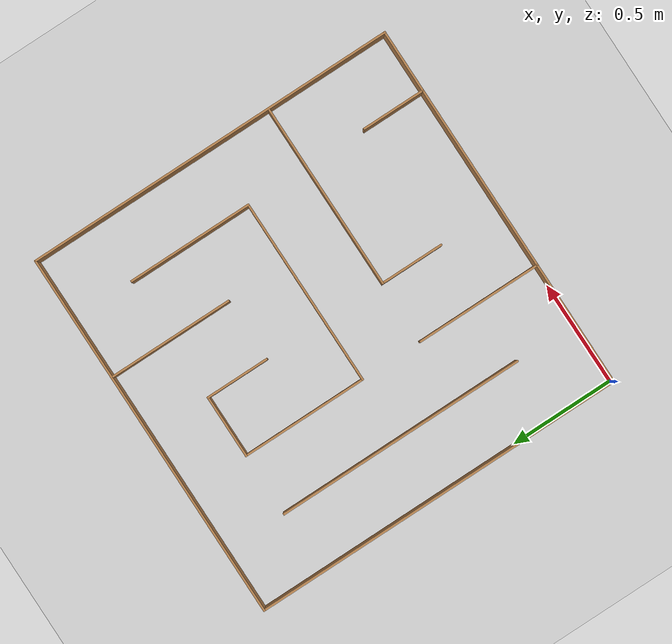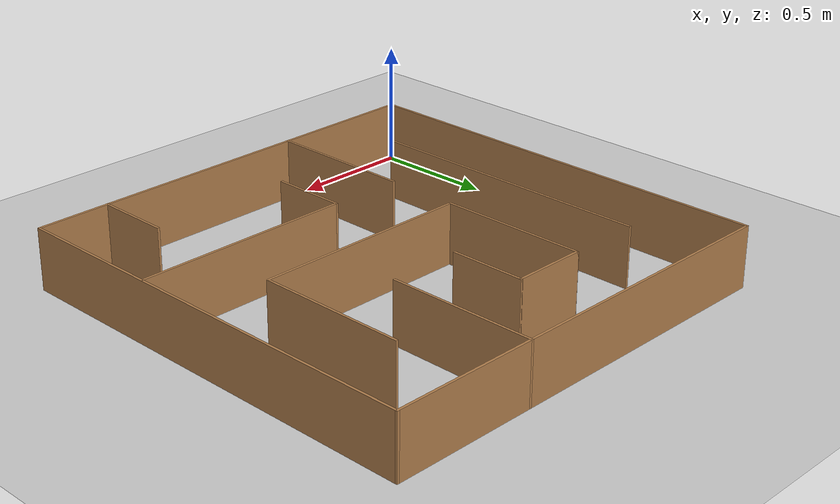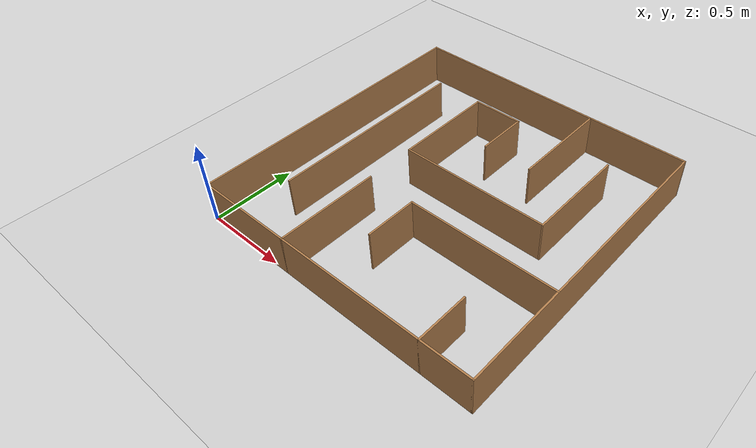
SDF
<sdf version="1.6">
 <world name="default">
  <light name="sun" type="directional">
   <pose>0 0 10 0 -0 0</pose>
   <diffuse>0.8 0.8 0.8 1</diffuse>
   <specular>0.1 0.1 0.1 1</specular>
   <attenuation>
    <range>1000</range>
    <constant>0.9</constant>
    <linear>0.01</linear>
    <quadratic>0.001</quadratic>
   </attenuation>
   <direction>-0.5 0.5 -1</direction>
  </light>
  <model name="ground_plane">
   <static>1</static>
   <link name="link">
    <collision name="collision">
     <geometry><plane><normal>0 0 1</normal><size>100 100</size></plane></geometry>
     <surface><friction><ode><mu>100</mu><mu2>50</mu2></ode></friction></surface>
    </collision>
    <visual name="visual">
     <cast_shadows>0</cast_shadows>
     <geometry><plane><normal>0 0 1</normal><size>100 100</size></plane></geometry>
     <material>
      <script><uri>file://media/materials/scripts/gazebo.material</uri><name>Gazebo/Grey</name></script>
     </material>
    </visual>
   </link>
  </model>
  <gravity>0 0 -9.8</gravity>
  <magnetic_field>6e-06 2.3e-05 -4.2e-05</magnetic_field>
  <atmosphere type="adiabatic"/>
  <physics name="default_physics" default="0" type="ode">
   <max_step_size>0.001</max_step_size>
   <real_time_factor>1</real_time_factor>
   <real_time_update_rate>1000</real_time_update_rate>
  </physics>
  <scene><ambient>0.4 0.4 0.4 1</ambient><background>0.7 0.7 0.7 1</background><shadows>1</shadows></scene>
  <spherical_coordinates>
   <surface_model>EARTH_WGS84</surface_model>
   <latitude_deg>0</latitude_deg>
   <longitude_deg>0</longitude_deg>
   <elevation>0</elevation>
   <heading_deg>0</heading_deg>
  </spherical_coordinates>
  <model name="env">
   <pose>0.9 0.9 0 0 -0 0</pose>
   <link name="Wall_0">
    <collision name="Wall_0_Collision">
     <geometry><box><size>0.01 0.01 0.25</size></box></geometry>
     <pose>0 0 0.125 0 -0 0</pose>
    </collision>
    <visual name="Wall_0_Visual">
     <pose>0 0 0.125 0 -0 0</pose>
     <geometry><box><size>0.01 0.01 0.25</size></box></geometry>
     <material>
      <script><uri>file://media/materials/scripts/gazebo.material</uri><name>Gazebo/Grey</name></script>
      <ambient>1 1 1 1</ambient>
     </material>
    </visual>
    <pose>-0.9 -0.9 0 0 -0 0</pose>
   </link>
   <link name="Wall_1">
    <collision name="Wall_1_Collision">
     <geometry><box><size>0.01 0.01 0.25</size></box></geometry>
     <pose>0 0 0.125 0 -0 0</pose>
    </collision>
    <visual name="Wall_1_Visual">
     <pose>0 0 0.125 0 -0 0</pose>
     <geometry><box><size>0.01 0.01 0.25</size></box></geometry>
     <material>
      <script><uri>file://media/materials/scripts/gazebo.material</uri><name>Gazebo/Grey</name></script>
      <ambient>1 1 1 1</ambient>
     </material>
    </visual>
    <pose>-0.9 -0.9 0 0 -0 0</pose>
   </link>
   <link name="Wall_2">
    <collision name="Wall_2_Collision">
     <geometry><box><size>1.81 0.01 0.25</size></box></geometry>
     <pose>0 0 0.125 0 -0 0</pose>
    </collision>
    <visual name="Wall_2_Visual">
     <pose>0 0 0.125 0 -0 0</pose>
     <geometry><box><size>1.81 0.01 0.25</size></box></geometry>
     <material>
      <script><uri>file://media/materials/scripts/gazebo.material</uri><name>Gazebo/Wood</name></script>
      <ambient>1 1 1 1</ambient>
     </material>
    </visual>
    <pose>0 -0.9 0 0 -0 0</pose>
   </link>
   <link name="Wall_29">
    <collision name="Wall_29_Collision">
     <geometry><box><size>1.81 0.01 0.25</size></box></geometry>
     <pose>0 0 0.125 0 -0 0</pose>
    </collision>
    <visual name="Wall_29_Visual">
     <pose>0 0 0.125 0 -0 0</pose>
     <geometry><box><size>1.81 0.01 0.25</size></box></geometry>
     <material>
      <script><uri>file://media/materials/scripts/gazebo.material</uri><name>Gazebo/Wood</name></script>
      <ambient>1 1 1 1</ambient>
     </material>
    </visual>
    <pose>-0.9 0 0 0 -0 1.5708</pose>
   </link>
   <link name="Wall_31">
    <collision name="Wall_31_Collision">
     <geometry><box><size>1.21 0.01 0.25</size></box></geometry>
     <pose>0 0 0.125 0 -0 0</pose>
    </collision>
    <visual name="Wall_31_Visual">
     <pose>0 0 0.125 0 -0 0</pose>
     <geometry><box><size>1.21 0.01 0.25</size></box></geometry>
     <material>
      <script><uri>file://media/materials/scripts/gazebo.material</uri><name>Gazebo/Wood</name></script>
      <ambient>1 1 1 1</ambient>
     </material>
    </visual>
    <pose>-0.6 0 0 0 -0 1.5708</pose>
   </link>
   <link name="Wall_33">
    <collision name="Wall_33_Collision">
     <geometry><box><size>0.61 0.01 0.25</size></box></geometry>
     <pose>0 0 0.125 0 -0 0</pose>
    </collision>
    <visual name="Wall_33_Visual">
     <pose>0 0 0.125 0 -0 0</pose>
     <geometry><box><size>0.61 0.01 0.25</size></box></geometry>
     <material>
      <script><uri>file://media/materials/scripts/gazebo.material</uri><name>Gazebo/Wood</name></script>
      <ambient>1 1 1 1</ambient>
     </material>
    </visual>
    <pose>-0.3 0.3 0 0 -0 1.5708</pose>
   </link>
   <link name="Wall_35">
    <collision name="Wall_35_Collision">
     <geometry><box><size>0.61 0.01 0.25</size></box></geometry>
     <pose>0 0 0.125 0 -0 0</pose>
    </collision>
    <visual name="Wall_35_Visual">
     <pose>0 0 0.125 0 -0 0</pose>
     <geometry><box><size>0.61 0.01 0.25</size></box></geometry>
     <material>
      <script><uri>file://media/materials/scripts/gazebo.material</uri><name>Gazebo/Wood</name></script>
      <ambient>1 1 1 1</ambient>
     </material>
    </visual>
    <pose>-0.3 -0.6 0 0 -0 1.5708</pose>
   </link>
   <link name="Wall_37">
    <collision name="Wall_37_Collision">
     <geometry><box><size>1.81 0.01 0.25</size></box></geometry>
     <pose>0 0 0.125 0 -0 0</pose>
    </collision>
    <visual name="Wall_37_Visual">
     <pose>0 0 0.125 0 -0 0</pose>
     <geometry><box><size>1.81 0.01 0.25</size></box></geometry>
     <material>
      <script><uri>file://media/materials/scripts/gazebo.material</uri><name>Gazebo/Wood</name></script>
      <ambient>1 1 1 1</ambient>
     </material>
    </visual>
    <pose>0 0.9 0 0 -0 3.14159</pose>
   </link>
   <link name="Wall_39">
    <collision name="Wall_39_Collision">
     <geometry><box><size>0.91 0.01 0.25</size></box></geometry>
     <pose>0 0 0.125 0 -0 0</pose>
    </collision>
    <visual name="Wall_39_Visual">
     <pose>0 0 0.125 0 -0 0</pose>
     <geometry><box><size>0.91 0.01 0.25</size></box></geometry>
     <material>
      <script><uri>file://media/materials/scripts/gazebo.material</uri><name>Gazebo/Wood</name></script>
      <ambient>1 1 1 1</ambient>
     </material>
    </visual>
    <pose>0.45 -0.3 0 0 -0 0</pose>
   </link>
   <link name="Wall_43">
    <collision name="Wall_43_Collision">
     <geometry><box><size>0.61 0.01 0.25</size></box></geometry>
     <pose>0 0 0.125 0 -0 0</pose>
    </collision>
    <visual name="Wall_43_Visual">
     <pose>0 0 0.125 0 -0 0</pose>
     <geometry><box><size>0.61 0.01 0.25</size></box></geometry>
     <material>
      <script><uri>file://media/materials/scripts/gazebo.material</uri><name>Gazebo/Wood</name></script>
      <ambient>1 1 1 1</ambient>
     </material>
    </visual>
    <pose>0.3 0.6 0 0 -0 1.5708</pose>
   </link>
   <link name="Wall_45">
    <collision name="Wall_45_Collision">
     <geometry><box><size>0.61 0.01 0.25</size></box></geometry>
     <pose>0 0 0.125 0 -0 0</pose>
    </collision>
    <visual name="Wall_45_Visual">
     <pose>0 0 0.125 0 -0 0</pose>
     <geometry><box><size>0.61 0.01 0.25</size></box></geometry>
     <material>
      <script><uri>file://media/materials/scripts/gazebo.material</uri><name>Gazebo/Wood</name></script>
      <ambient>1 1 1 1</ambient>
     </material>
    </visual>
    <pose>0.6 0.3 0 0 -0 1.5708</pose>
   </link>
   <link name="Wall_47">
    <collision name="Wall_47_Collision">
     <geometry><box><size>0.31 0.01 0.25</size></box></geometry>
     <pose>0 0 0.125 0 -0 0</pose>
    </collision>
    <visual name="Wall_47_Visual">
     <pose>0 0 0.125 0 -0 0</pose>
     <geometry><box><size>0.31 0.01 0.25</size></box></geometry>
     <material>
      <script><uri>file://media/materials/scripts/gazebo.material</uri><name>Gazebo/Wood</name></script>
      <ambient>1 1 1 1</ambient>
     </material>
    </visual>
    <pose>0.6 -0.75 0 0 -0 1.5708</pose>
   </link>
   <link name="Wall_49">
    <collision name="Wall_49_Collision">
     <geometry><box><size>0.31 0.01 0.25</size></box></geometry>
     <pose>0 0 0.125 0 -0 0</pose>
    </collision>
    <visual name="Wall_49_Visual">
     <pose>0 0 0.125 0 -0 0</pose>
     <geometry><box><size>0.31 0.01 0.25</size></box></geometry>
     <material>
      <script><uri>file://media/materials/scripts/gazebo.material</uri><name>Gazebo/Wood</name></script>
      <ambient>1 1 1 1</ambient>
     </material>
    </visual>
    <pose>0 -0.45 0 0 -0 1.5708</pose>
   </link>
   <link name="Wall_51">
    <collision name="Wall_51_Collision">
     <geometry><box><size>0.91 0.01 0.25</size></box></geometry>
     <pose>0 0 0.125 0 -0 0</pose>
    </collision>
    <visual name="Wall_51_Visual">
     <pose>0 0 0.125 0 -0 0</pose>
     <geometry><box><size>0.91 0.01 0.25</size></box></geometry>
     <material>
      <script><uri>file://media/materials/scripts/gazebo.material</uri><name>Gazebo/Wood</name></script>
      <ambient>1 1 1 1</ambient>
     </material>
    </visual>
    <pose>0.15 0 0 0 -0 0</pose>
   </link>
   <link name="Wall_53">
    <collision name="Wall_53_Collision">
     <geometry><box><size>0.31 0.01 0.25</size></box></geometry>
     <pose>0 0 0.125 0 -0 0</pose>
    </collision>
    <visual name="Wall_53_Visual">
     <pose>0 0 0.125 0 -0 0</pose>
     <geometry><box><size>0.31 0.01 0.25</size></box></geometry>
     <material>
      <script><uri>file://media/materials/scripts/gazebo.material</uri><name>Gazebo/Wood</name></script>
      <ambient>1 1 1 1</ambient>
     </material>
    </visual>
    <pose>-0.15 0.6 0 0 -0 0</pose>
   </link>
   <link name="Wall_55">
    <collision name="Wall_55_Collision">
     <geometry><box><size>0.31 0.01 0.25</size></box></geometry>
     <pose>0 0 0.125 0 -0 0</pose>
    </collision>
    <visual name="Wall_55_Visual">
     <pose>0 0 0.125 0 -0 0</pose>
     <geometry><box><size>0.31 0.01 0.25</size></box></geometry>
     <material>
      <script><uri>file://media/materials/scripts/gazebo.material</uri><name>Gazebo/Wood</name></script>
      <ambient>1 1 1 1</ambient>
     </material>
    </visual>
    <pose>0 0.45 0 0 0 -1.5708</pose>
   </link>
   <link name="Wall_57">
    <collision name="Wall_57_Collision">
     <geometry><box><size>1.81 0.01 0.25</size></box></geometry>
     <pose>0 0 0.125 0 -0 0</pose>
    </collision>
    <visual name="Wall_57_Visual">
     <pose>0 0 0.125 0 -0 0</pose>
     <geometry><box><size>1.81 0.01 0.25</size></box></geometry>
     <material>
      <script><uri>file://media/materials/scripts/gazebo.material</uri><name>Gazebo/Wood</name></script>
      <ambient>1 1 1 1</ambient>
     </material>
    </visual>
    <pose>0.9 0 0 0 -0 1.5708</pose>
   </link>
   <static>1</static>
  </model>
 </world>
</sdf>
